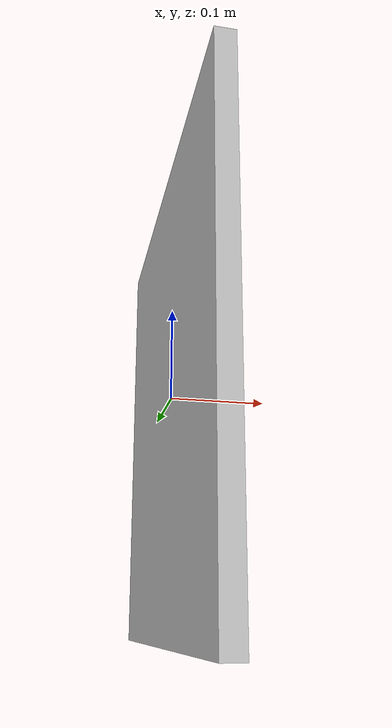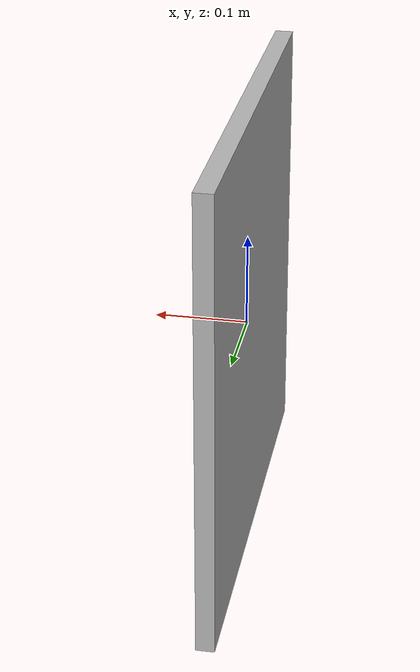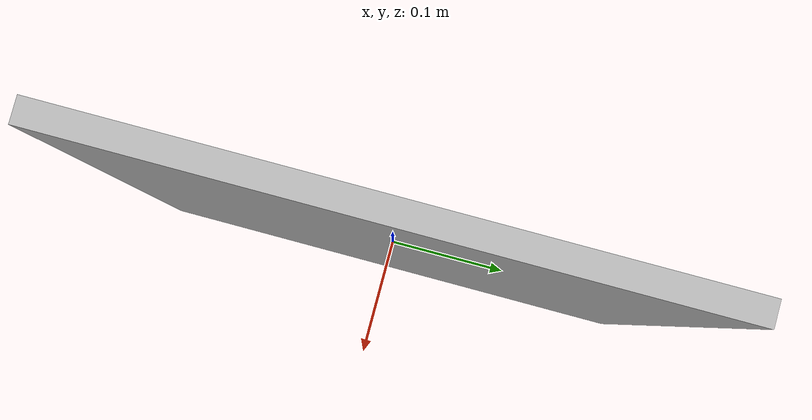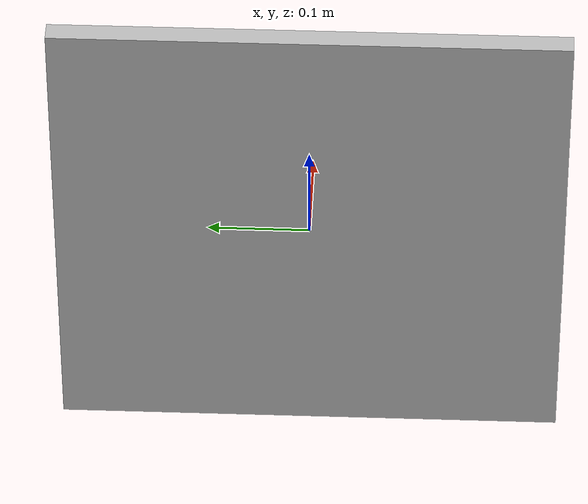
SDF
<?xml version="1.0" ?>
<sdf version="1.4">
  <model name="aruco_3">
    <static>1</static>
    <link name="marker">
      <inertial>
        <mass>0.1</mass>
        <inertia>
          <ixx>0.000000</ixx>
          <ixy>0.000000</ixy>
          <ixz>0.000000</ixz>
          <iyy>0.000000</iyy>
          <iyz>0.000000</iyz>
          <izz>0.000000</izz>
        </inertia>
      </inertial>
      <visual name="visual">
        <geometry>
          <box>
            <size>0.02 0.5 0.5</size>
          </box>
        </geometry>
        <material>
          <script>
	    <uri>model://aruco_3/material/scripts</uri>
	    <uri>model://aruco_3/material/textures</uri>
            <name>Aruco/aruco_3</name>
          </script>
        </material>
      </visual>
      <collision name="collision">
        <geometry>
          <box>
            <size>0.02 0.5 0.5</size>
          </box>
        </geometry>
        <surface>
          <bounce />
          <friction>
            <ode />
          </friction>
          <contact>
            <ode />
          </contact>
        </surface>
      </collision>
      <self_collide>1</self_collide>
      <kinematic>0</kinematic>
      <gravity>0</gravity>
    </link>
  </model>
</sdf>
